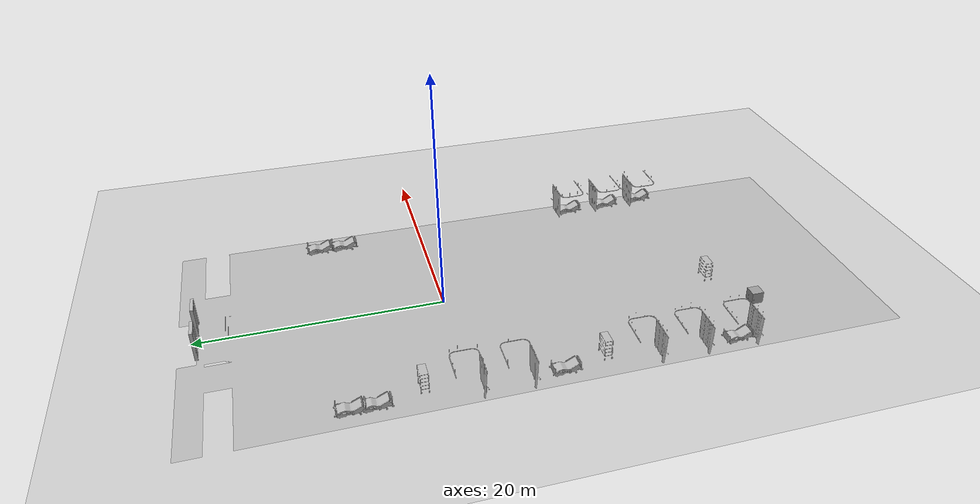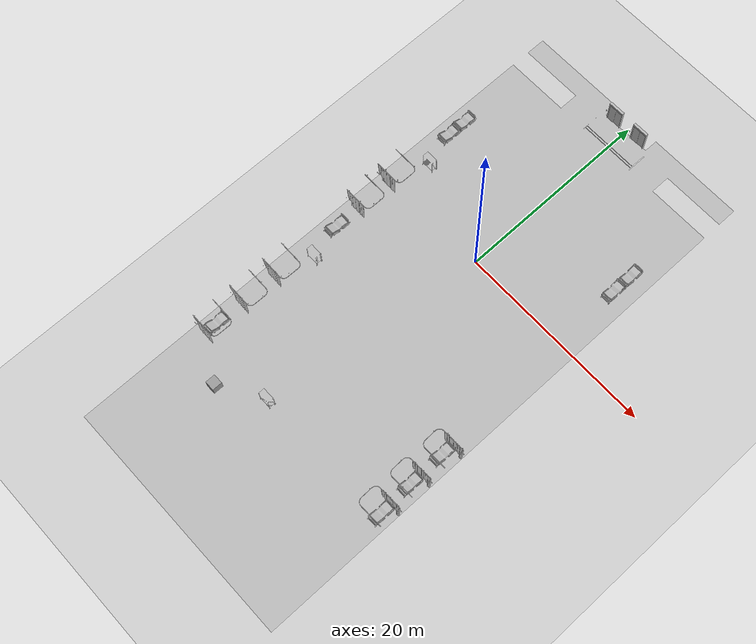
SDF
<sdf version="1.7">
 <world name="world">
  <gravity>0 0 -9.8</gravity>
  <physics name="default_physics" default="0" type="ode">
   <max_step_size>0.001</max_step_size>
   <real_time_factor>1</real_time_factor>
   <real_time_update_rate>1000</real_time_update_rate>
  </physics>
  <scene><ambient>0.6 0.6 0.6 1</ambient><background>0.4 0.4 0.4 1</background><shadows>0</shadows></scene>
  <light name="sun" type="directional">
   <pose>0 0 10 0 -0 0</pose>
   <diffuse>0.8 0.8 0.8 1</diffuse>
   <specular>0.2 0.2 0.2 1</specular>
   <attenuation>
    <range>1000</range>
    <constant>0.9</constant>
    <linear>0.01</linear>
    <quadratic>0.001</quadratic>
   </attenuation>
   <direction>-0.5 0.1 -0.9</direction>
   <spot><inner_angle>0</inner_angle><outer_angle>0</outer_angle><falloff>0</falloff></spot>
  </light>
  <model name="ground_plane">
   <static>1</static>
   <link name="link">
    <collision name="collision">
     <geometry><plane><normal>0 0 1</normal><size>100 100</size></plane></geometry>
     <surface>
      <contact><collide_bitmask>65535</collide_bitmask></contact>
      <friction><ode><mu>100</mu><mu2>50</mu2></ode></friction>
     </surface>
    </collision>
    <visual name="visual">
     <cast_shadows>0</cast_shadows>
     <geometry><plane><normal>0 0 1</normal><size>100 100</size></plane></geometry>
     <material>
      <script><uri>file://media/materials/scripts/gazebo.material</uri><name>Gazebo/Grey</name></script>
     </material>
    </visual>
   </link>
   <pose>0 0 -0.1 0 -0 0</pose>
  </model>
  <model name="aws_robomaker_hospital_floor_01_floor_1">
   <frame name="aws_robomaker_hospital_floor_01_floor::__model__" attached_to="aws_robomaker_hospital_floor_01_floor::link">
    <pose relative_to="__model__">-0.001425 -0.014447 0 0 -0 0</pose>
   </frame>
   <link name="aws_robomaker_hospital_floor_01_floor::link">
    <visual name="visual">
     <geometry>
      <mesh>
       <uri>model://aws_robomaker_hospital_floor_01_floor/meshes/aws_robomaker_hospital_floor_01_floor_visual.dae</uri>
      </mesh>
     </geometry>
    </visual>
    <collision name="collision">
     <geometry>
      <mesh>
       <uri>model://aws_robomaker_hospital_floor_01_floor/meshes/aws_robomaker_hospital_floor_01_floor_collision.dae</uri>
      </mesh>
     </geometry>
     <surface><friction><ode><mu>100</mu><mu2>50</mu2></ode></friction></surface>
    </collision>
    <pose relative_to="aws_robomaker_hospital_floor_01_floor::__model__">0 0 0 0 -0 0</pose>
   </link>
   <static>1</static>
  </model>
  <model name="aws_robomaker_hospital_elevator_01_portal_1">
   <frame name="aws_robomaker_hospital_elevator_01_portal::__model__" attached_to="aws_robomaker_hospital_elevator_01_portal::link">
    <pose relative_to="__model__">-1.50654 19.4813 0.19 0 -0 0</pose>
   </frame>
   <link name="aws_robomaker_hospital_elevator_01_portal::link">
    <visual name="visual">
     <geometry>
      <mesh>
       <uri>model://aws_robomaker_hospital_elevator_01_portal/meshes/aws_robomaker_hospital_elevator_01_portal_visual.dae</uri>
      </mesh>
     </geometry>
    </visual>
    <collision name="collision">
     <geometry>
      <mesh>
       <uri>model://aws_robomaker_hospital_elevator_01_portal/meshes/aws_robomaker_hospital_elevator_01_portal_collision.dae</uri>
      </mesh>
     </geometry>
    </collision>
    <pose relative_to="aws_robomaker_hospital_elevator_01_portal::__model__">0 0 0 0 -0 0</pose>
   </link>
   <static>1</static>
  </model>
  <model name="aws_robomaker_hospital_elevator_01_portal_2">
   <frame name="aws_robomaker_hospital_elevator_01_portal::__model__" attached_to="aws_robomaker_hospital_elevator_01_portal::link">
    <pose relative_to="__model__">1.51134 19.487 0.19 0 -0 0</pose>
   </frame>
   <link name="aws_robomaker_hospital_elevator_01_portal::link">
    <visual name="visual">
     <geometry>
      <mesh>
       <uri>model://aws_robomaker_hospital_elevator_01_portal/meshes/aws_robomaker_hospital_elevator_01_portal_visual.dae</uri>
      </mesh>
     </geometry>
    </visual>
    <collision name="collision">
     <geometry>
      <mesh>
       <uri>model://aws_robomaker_hospital_elevator_01_portal/meshes/aws_robomaker_hospital_elevator_01_portal_collision.dae</uri>
      </mesh>
     </geometry>
    </collision>
    <pose relative_to="aws_robomaker_hospital_elevator_01_portal::__model__">0 0 0 0 -0 0</pose>
   </link>
   <static>1</static>
  </model>
  <model name="aws_robomaker_hospital_elevator_01_door_1">
   <frame name="aws_robomaker_hospital_elevator_01_door::__model__" attached_to="aws_robomaker_hospital_elevator_01_door::link">
    <pose relative_to="__model__">-1.51 19.35 0.19 0 -0 0</pose>
   </frame>
   <link name="aws_robomaker_hospital_elevator_01_door::link">
    <visual name="visual">
     <geometry>
      <mesh>
       <uri>model://aws_robomaker_hospital_elevator_01_door/meshes/aws_robomaker_hospital_elevator_01_door_visual.dae</uri>
      </mesh>
     </geometry>
    </visual>
    <collision name="collision">
     <geometry>
      <mesh>
       <uri>model://aws_robomaker_hospital_elevator_01_door/meshes/aws_robomaker_hospital_elevator_01_door_collision.dae</uri>
      </mesh>
     </geometry>
    </collision>
    <pose relative_to="aws_robomaker_hospital_elevator_01_door::__model__">0 0 0 0 -0 0</pose>
   </link>
   <static>1</static>
  </model>
  <model name="aws_robomaker_hospital_elevator_01_door_2">
   <frame name="aws_robomaker_hospital_elevator_01_door::__model__" attached_to="aws_robomaker_hospital_elevator_01_door::link">
    <pose relative_to="__model__">1.52843 19.3627 0.19 0 -0 0</pose>
   </frame>
   <link name="aws_robomaker_hospital_elevator_01_door::link">
    <visual name="visual">
     <geometry>
      <mesh>
       <uri>model://aws_robomaker_hospital_elevator_01_door/meshes/aws_robomaker_hospital_elevator_01_door_visual.dae</uri>
      </mesh>
     </geometry>
    </visual>
    <collision name="collision">
     <geometry>
      <mesh>
       <uri>model://aws_robomaker_hospital_elevator_01_door/meshes/aws_robomaker_hospital_elevator_01_door_collision.dae</uri>
      </mesh>
     </geometry>
    </collision>
    <pose relative_to="aws_robomaker_hospital_elevator_01_door::__model__">0 0 0 0 -0 0</pose>
   </link>
   <static>1</static>
  </model>
  <model name="aws_robomaker_hospital_curtain_half_open_01_1">
   <frame name="aws_robomaker_hospital_curtain_half_open_01::__model__" attached_to="aws_robomaker_hospital_curtain_half_open_01::link">
    <pose relative_to="__model__">-11.0216 -13.8069 0 0 -0 1.55358</pose>
   </frame>
   <link name="aws_robomaker_hospital_curtain_half_open_01::link">
    <visual name="visual">
     <geometry>
      <mesh>
       <uri>model://aws_robomaker_hospital_curtain_half_open_01/meshes/aws_robomaker_hospital_curtain_half_open_01_visual.dae</uri>
      </mesh>
     </geometry>
    </visual>
    <collision name="collision">
     <geometry>
      <mesh>
       <uri>model://aws_robomaker_hospital_curtain_half_open_01/meshes/aws_robomaker_hospital_curtain_half_open_01_collision.dae</uri>
      </mesh>
     </geometry>
    </collision>
    <pose relative_to="aws_robomaker_hospital_curtain_half_open_01::__model__">0 0 0 0 -0 0</pose>
   </link>
   <static>1</static>
  </model>
  <model name="aws_robomaker_hospital_curtain_half_open_01_2">
   <frame name="aws_robomaker_hospital_curtain_half_open_01::__model__" attached_to="aws_robomaker_hospital_curtain_half_open_01::link">
    <pose relative_to="__model__">11.1417 -21.4039 0 0 0 -1.55117</pose>
   </frame>
   <link name="aws_robomaker_hospital_curtain_half_open_01::link">
    <visual name="visual">
     <geometry>
      <mesh>
       <uri>model://aws_robomaker_hospital_curtain_half_open_01/meshes/aws_robomaker_hospital_curtain_half_open_01_visual.dae</uri>
      </mesh>
     </geometry>
    </visual>
    <collision name="collision">
     <geometry>
      <mesh>
       <uri>model://aws_robomaker_hospital_curtain_half_open_01/meshes/aws_robomaker_hospital_curtain_half_open_01_collision.dae</uri>
      </mesh>
     </geometry>
    </collision>
    <pose relative_to="aws_robomaker_hospital_curtain_half_open_01::__model__">0 0 0 0 -0 0</pose>
   </link>
   <static>1</static>
  </model>
  <model name="aws_robomaker_hospital_curtain_half_open_01_3">
   <frame name="aws_robomaker_hospital_curtain_half_open_01::__model__" attached_to="aws_robomaker_hospital_curtain_half_open_01::link">
    <pose relative_to="__model__">11.1068 -17.8472 0 0 0 -1.55117</pose>
   </frame>
   <link name="aws_robomaker_hospital_curtain_half_open_01::link">
    <visual name="visual">
     <geometry>
      <mesh>
       <uri>model://aws_robomaker_hospital_curtain_half_open_01/meshes/aws_robomaker_hospital_curtain_half_open_01_visual.dae</uri>
      </mesh>
     </geometry>
    </visual>
    <collision name="collision">
     <geometry>
      <mesh>
       <uri>model://aws_robomaker_hospital_curtain_half_open_01/meshes/aws_robomaker_hospital_curtain_half_open_01_collision.dae</uri>
      </mesh>
     </geometry>
    </collision>
    <pose relative_to="aws_robomaker_hospital_curtain_half_open_01::__model__">0 0 0 0 -0 0</pose>
   </link>
   <static>1</static>
  </model>
  <model name="aws_robomaker_hospital_curtain_half_open_01_4">
   <frame name="aws_robomaker_hospital_curtain_half_open_01::__model__" attached_to="aws_robomaker_hospital_curtain_half_open_01::link">
    <pose relative_to="__model__">11.1374 -14.1551 0 0 0 -1.55117</pose>
   </frame>
   <link name="aws_robomaker_hospital_curtain_half_open_01::link">
    <visual name="visual">
     <geometry>
      <mesh>
       <uri>model://aws_robomaker_hospital_curtain_half_open_01/meshes/aws_robomaker_hospital_curtain_half_open_01_visual.dae</uri>
      </mesh>
     </geometry>
    </visual>
    <collision name="collision">
     <geometry>
      <mesh>
       <uri>model://aws_robomaker_hospital_curtain_half_open_01/meshes/aws_robomaker_hospital_curtain_half_open_01_collision.dae</uri>
      </mesh>
     </geometry>
    </collision>
    <pose relative_to="aws_robomaker_hospital_curtain_half_open_01::__model__">0 0 0 0 -0 0</pose>
   </link>
   <static>1</static>
  </model>
  <model name="aws_robomaker_hospital_curtain_half_open_01_5">
   <frame name="aws_robomaker_hospital_curtain_half_open_01::__model__" attached_to="aws_robomaker_hospital_curtain_half_open_01::link">
    <pose relative_to="__model__">-11.0332 -17.61 0 0 -0 1.55358</pose>
   </frame>
   <link name="aws_robomaker_hospital_curtain_half_open_01::link">
    <visual name="visual">
     <geometry>
      <mesh>
       <uri>model://aws_robomaker_hospital_curtain_half_open_01/meshes/aws_robomaker_hospital_curtain_half_open_01_visual.dae</uri>
      </mesh>
     </geometry>
    </visual>
    <collision name="collision">
     <geometry>
      <mesh>
       <uri>model://aws_robomaker_hospital_curtain_half_open_01/meshes/aws_robomaker_hospital_curtain_half_open_01_collision.dae</uri>
      </mesh>
     </geometry>
    </collision>
    <pose relative_to="aws_robomaker_hospital_curtain_half_open_01::__model__">0 0 0 0 -0 0</pose>
   </link>
   <static>1</static>
  </model>
  <model name="aws_robomaker_hospital_curtain_half_open_01_6">
   <frame name="aws_robomaker_hospital_curtain_half_open_01::__model__" attached_to="aws_robomaker_hospital_curtain_half_open_01::link">
    <pose relative_to="__model__">-11.0086 -21.7566 0 0 -0 1.55358</pose>
   </frame>
   <link name="aws_robomaker_hospital_curtain_half_open_01::link">
    <visual name="visual">
     <geometry>
      <mesh>
       <uri>model://aws_robomaker_hospital_curtain_half_open_01/meshes/aws_robomaker_hospital_curtain_half_open_01_visual.dae</uri>
      </mesh>
     </geometry>
    </visual>
    <collision name="collision">
     <geometry>
      <mesh>
       <uri>model://aws_robomaker_hospital_curtain_half_open_01/meshes/aws_robomaker_hospital_curtain_half_open_01_collision.dae</uri>
      </mesh>
     </geometry>
    </collision>
    <pose relative_to="aws_robomaker_hospital_curtain_half_open_01::__model__">0 0 0 0 -0 0</pose>
   </link>
   <static>1</static>
  </model>
  <model name="CGMClassic_1">
   <frame name="CGMClassic::__model__" attached_to="CGMClassic::body">
    <pose relative_to="__model__">11.1777 -18.4129 0 0 0 -3.13719</pose>
   </frame>
   <static>1</static>
   <link name="CGMClassic::body">
    <pose relative_to="CGMClassic::__model__">0 0 0 0 -0 0</pose>
    <visual name="visual">
     <geometry>
      <mesh><uri>model://CGMClassic/meshes/CGMClassic.obj</uri><scale>0.01 0.01 0.01</scale></mesh>
     </geometry>
    </visual>
    <collision name="collision">
     <geometry>
      <mesh><uri>model://CGMClassic/meshes/CGMClassic.obj</uri><scale>0.01 0.01 0.01</scale></mesh>
     </geometry>
    </collision>
   </link>
  </model>
  <model name="CGMClassic_2">
   <frame name="CGMClassic::__model__" attached_to="CGMClassic::body">
    <pose relative_to="__model__">11.1179 -14.6493 0 0 0 -3.13599</pose>
   </frame>
   <static>1</static>
   <link name="CGMClassic::body">
    <pose relative_to="CGMClassic::__model__">0 0 0 0 -0 0</pose>
    <visual name="visual">
     <geometry>
      <mesh><uri>model://CGMClassic/meshes/CGMClassic.obj</uri><scale>0.01 0.01 0.01</scale></mesh>
     </geometry>
    </visual>
    <collision name="collision">
     <geometry>
      <mesh><uri>model://CGMClassic/meshes/CGMClassic.obj</uri><scale>0.01 0.01 0.01</scale></mesh>
     </geometry>
    </collision>
   </link>
  </model>
  <model name="CGMClassic_3">
   <frame name="CGMClassic::__model__" attached_to="CGMClassic::body">
    <pose relative_to="__model__">-11.2304 -21.1134 0 0 0 -3.11834</pose>
   </frame>
   <static>1</static>
   <link name="CGMClassic::body">
    <pose relative_to="CGMClassic::__model__">0 0 0 0 -0 0</pose>
    <visual name="visual">
     <geometry>
      <mesh><uri>model://CGMClassic/meshes/CGMClassic.obj</uri><scale>0.01 0.01 0.01</scale></mesh>
     </geometry>
    </visual>
    <collision name="collision">
     <geometry>
      <mesh><uri>model://CGMClassic/meshes/CGMClassic.obj</uri><scale>0.01 0.01 0.01</scale></mesh>
     </geometry>
    </collision>
   </link>
  </model>
  <model name="CGMClassic_4">
   <frame name="CGMClassic::__model__" attached_to="CGMClassic::body">
    <pose relative_to="__model__">-11.0878 -7.00992 0 0 -0 3.1351</pose>
   </frame>
   <static>1</static>
   <link name="CGMClassic::body">
    <pose relative_to="CGMClassic::__model__">0 0 0 0 -0 0</pose>
    <visual name="visual">
     <geometry>
      <mesh><uri>model://CGMClassic/meshes/CGMClassic.obj</uri><scale>0.01 0.01 0.01</scale></mesh>
     </geometry>
    </visual>
    <collision name="collision">
     <geometry>
      <mesh><uri>model://CGMClassic/meshes/CGMClassic.obj</uri><scale>0.01 0.01 0.01</scale></mesh>
     </geometry>
    </collision>
   </link>
  </model>
  <model name="CGMClassic_5">
   <frame name="CGMClassic::__model__" attached_to="CGMClassic::body">
    <pose relative_to="__model__">-11.0106 8.9505 -0.008203 -0.035019 -0.000392 3.13388</pose>
   </frame>
   <static>1</static>
   <link name="CGMClassic::body">
    <pose relative_to="CGMClassic::__model__">0 0 0 0 -0 0</pose>
    <visual name="visual">
     <geometry>
      <mesh><uri>model://CGMClassic/meshes/CGMClassic.obj</uri><scale>0.01 0.01 0.01</scale></mesh>
     </geometry>
    </visual>
    <collision name="collision">
     <geometry>
      <mesh><uri>model://CGMClassic/meshes/CGMClassic.obj</uri><scale>0.01 0.01 0.01</scale></mesh>
     </geometry>
    </collision>
   </link>
  </model>
  <model name="CGMClassic_6">
   <frame name="CGMClassic::__model__" attached_to="CGMClassic::body">
    <pose relative_to="__model__">-11.025 7.10335 0 -0.035021 1.8e-05 -3.13762</pose>
   </frame>
   <static>1</static>
   <link name="CGMClassic::body">
    <pose relative_to="CGMClassic::__model__">0 0 0 0 -0 0</pose>
    <visual name="visual">
     <geometry>
      <mesh><uri>model://CGMClassic/meshes/CGMClassic.obj</uri><scale>0.01 0.01 0.01</scale></mesh>
     </geometry>
    </visual>
    <collision name="collision">
     <geometry>
      <mesh><uri>model://CGMClassic/meshes/CGMClassic.obj</uri><scale>0.01 0.01 0.01</scale></mesh>
     </geometry>
    </collision>
   </link>
  </model>
  <model name="aws_robomaker_hospital_curtain_half_open_01_7">
   <frame name="aws_robomaker_hospital_curtain_half_open_01::__model__" attached_to="aws_robomaker_hospital_curtain_half_open_01::link">
    <pose relative_to="__model__">-11.0426 0.066126 0 0 -0 1.56614</pose>
   </frame>
   <link name="aws_robomaker_hospital_curtain_half_open_01::link">
    <visual name="visual">
     <geometry>
      <mesh>
       <uri>model://aws_robomaker_hospital_curtain_half_open_01/meshes/aws_robomaker_hospital_curtain_half_open_01_visual.dae</uri>
      </mesh>
     </geometry>
    </visual>
    <collision name="collision">
     <geometry>
      <mesh>
       <uri>model://aws_robomaker_hospital_curtain_half_open_01/meshes/aws_robomaker_hospital_curtain_half_open_01_collision.dae</uri>
      </mesh>
     </geometry>
    </collision>
    <pose relative_to="aws_robomaker_hospital_curtain_half_open_01::__model__">0 0 0 0 -0 0</pose>
   </link>
   <static>1</static>
  </model>
  <model name="aws_robomaker_hospital_curtain_half_open_01_8">
   <frame name="aws_robomaker_hospital_curtain_half_open_01::__model__" attached_to="aws_robomaker_hospital_curtain_half_open_01::link">
    <pose relative_to="__model__">-11.0309 -3.75145 0 0 -0 1.56614</pose>
   </frame>
   <link name="aws_robomaker_hospital_curtain_half_open_01::link">
    <visual name="visual">
     <geometry>
      <mesh>
       <uri>model://aws_robomaker_hospital_curtain_half_open_01/meshes/aws_robomaker_hospital_curtain_half_open_01_visual.dae</uri>
      </mesh>
     </geometry>
    </visual>
    <collision name="collision">
     <geometry>
      <mesh>
       <uri>model://aws_robomaker_hospital_curtain_half_open_01/meshes/aws_robomaker_hospital_curtain_half_open_01_collision.dae</uri>
      </mesh>
     </geometry>
    </collision>
    <pose relative_to="aws_robomaker_hospital_curtain_half_open_01::__model__">0 0 0 0 -0 0</pose>
   </link>
   <static>1</static>
  </model>
  <model name="StorageRack_2">
   <frame name="StorageRack::__model__" attached_to="StorageRack::link">
    <pose relative_to="__model__">-2.69866 -22.4178 -8e-06 0 4e-06 0</pose>
   </frame>
   <link name="StorageRack::link">
    <pose relative_to="StorageRack::__model__">0 0 0 0 -0 0</pose>
    <visual name="visual">
     <geometry><mesh><uri>model://StorageRack/meshes/StorageRack.obj</uri></mesh></geometry>
    </visual>
    <collision name="collision">
     <geometry><mesh><uri>model://StorageRack/meshes/StorageRack.obj</uri></mesh></geometry>
    </collision>
   </link>
   <static>1</static>
  </model>
  <model name="CGMClassic_7">
   <frame name="CGMClassic::__model__" attached_to="CGMClassic::body">
    <pose relative_to="__model__">10.6166 9.06291 -0.008203 -0.03501 0.000885 -3.11285</pose>
   </frame>
   <static>1</static>
   <link name="CGMClassic::body">
    <pose relative_to="CGMClassic::__model__">0 0 0 0 -0 0</pose>
    <visual name="visual">
     <geometry>
      <mesh><uri>model://CGMClassic/meshes/CGMClassic.obj</uri><scale>0.01 0.01 0.01</scale></mesh>
     </geometry>
    </visual>
    <collision name="collision">
     <geometry>
      <mesh><uri>model://CGMClassic/meshes/CGMClassic.obj</uri><scale>0.01 0.01 0.01</scale></mesh>
     </geometry>
    </collision>
   </link>
  </model>
  <model name="CGMClassic_8">
   <frame name="CGMClassic::__model__" attached_to="CGMClassic::body">
    <pose relative_to="__model__">10.6006 6.90956 -0.008203 -0.035003 0.001133 -3.10576</pose>
   </frame>
   <static>1</static>
   <link name="CGMClassic::body">
    <pose relative_to="CGMClassic::__model__">0 0 0 0 -0 0</pose>
    <visual name="visual">
     <geometry>
      <mesh><uri>model://CGMClassic/meshes/CGMClassic.obj</uri><scale>0.01 0.01 0.01</scale></mesh>
     </geometry>
    </visual>
    <collision name="collision">
     <geometry>
      <mesh><uri>model://CGMClassic/meshes/CGMClassic.obj</uri><scale>0.01 0.01 0.01</scale></mesh>
     </geometry>
    </collision>
   </link>
  </model>
  <model name="CGMClassic_9">
   <frame name="CGMClassic::__model__" attached_to="CGMClassic::body">
    <pose relative_to="__model__">11.3613 -21.8867 0 0 0 -3.12292</pose>
   </frame>
   <static>1</static>
   <link name="CGMClassic::body">
    <pose relative_to="CGMClassic::__model__">0 0 0 0 -0 0</pose>
    <visual name="visual">
     <geometry>
      <mesh><uri>model://CGMClassic/meshes/CGMClassic.obj</uri><scale>0.01 0.01 0.01</scale></mesh>
     </geometry>
    </visual>
    <collision name="collision">
     <geometry>
      <mesh><uri>model://CGMClassic/meshes/CGMClassic.obj</uri><scale>0.01 0.01 0.01</scale></mesh>
     </geometry>
    </collision>
   </link>
  </model>
  <model name="StorageRack_3">
   <frame name="StorageRack::__model__" attached_to="StorageRack::link">
    <pose relative_to="__model__">-10.1178 -10.4694 -0 0 -0 0</pose>
   </frame>
   <link name="StorageRack::link">
    <pose relative_to="StorageRack::__model__">0 0 0 0 -0 0</pose>
    <visual name="visual">
     <geometry><mesh><uri>model://StorageRack/meshes/StorageRack.obj</uri></mesh></geometry>
    </visual>
    <collision name="collision">
     <geometry><mesh><uri>model://StorageRack/meshes/StorageRack.obj</uri></mesh></geometry>
    </collision>
   </link>
   <static>1</static>
  </model>
  <model name="StorageRack_4">
   <frame name="StorageRack::__model__" attached_to="StorageRack::link">
    <pose relative_to="__model__">-9.91557 3.5644 -9e-06 1e-06 1e-06 -0.000273</pose>
   </frame>
   <link name="StorageRack::link">
    <pose relative_to="StorageRack::__model__">0 0 0 0 -0 0</pose>
    <visual name="visual">
     <geometry><mesh><uri>model://StorageRack/meshes/StorageRack.obj</uri></mesh></geometry>
    </visual>
    <collision name="collision">
     <geometry><mesh><uri>model://StorageRack/meshes/StorageRack.obj</uri></mesh></geometry>
    </collision>
   </link>
   <static>1</static>
  </model>
  <magnetic_field>6e-06 2.3e-05 -4.2e-05</magnetic_field>
  <atmosphere type="adiabatic"/>
  <audio><device>default</device></audio>
  <spherical_coordinates>
   <surface_model>EARTH_WGS84</surface_model>
   <latitude_deg>0</latitude_deg>
   <longitude_deg>0</longitude_deg>
   <elevation>0</elevation>
   <heading_deg>0</heading_deg>
  </spherical_coordinates>
  <model name="unit_box">
   <link name="link">
    <inertial>
     <mass>1</mass>
     <inertia>
      <ixx>0.166667</ixx>
      <ixy>0</ixy>
      <ixz>0</ixz>
      <iyy>0.166667</iyy>
      <iyz>0</iyz>
      <izz>0.166667</izz>
     </inertia>
    </inertial>
    <visual name="visual">
     <geometry><box><size>1 1 1</size></box></geometry>
     <material>
      <script><name>Gazebo/Grey</name><uri>file://media/materials/scripts/gazebo.material</uri></script>
      <shader type="pixel"/>
     </material>
    </visual>
    <collision name="collision">
     <geometry><box><size>1 1 1</size></box></geometry>
     <surface>
      <friction>
       <ode><mu>1</mu><mu2>1</mu2><fdir1>0 0 0</fdir1><slip1>0</slip1><slip2>0</slip2></ode>
       <torsional>
        <coefficient>1</coefficient>
        <patch_radius>0</patch_radius>
        <surface_radius>0</surface_radius>
        <use_patch_radius>1</use_patch_radius>
        <ode><slip>0</slip></ode>
       </torsional>
      </friction>
      <bounce><restitution_coefficient>0</restitution_coefficient><threshold>1e+06</threshold></bounce>
      <contact>
       <collide_without_contact>0</collide_without_contact>
       <collide_without_contact_bitmask>1</collide_without_contact_bitmask>
       <collide_bitmask>1</collide_bitmask>
       <ode>
        <soft_cfm>0</soft_cfm>
        <soft_erp>0.2</soft_erp>
        <kp>1e+13</kp>
        <kd>1</kd>
        <max_vel>0.01</max_vel>
        <min_depth>0</min_depth>
       </ode>
       <bullet>
        <split_impulse>1</split_impulse>
        <split_impulse_penetration_threshold>-0.01</split_impulse_penetration_threshold>
        <soft_cfm>0</soft_cfm>
        <soft_erp>0.2</soft_erp>
        <kp>1e+13</kp>
        <kd>1</kd>
       </bullet>
      </contact>
     </surface>
    </collision>
   </link>
   <static>0</static>
   <pose>-6.93671 -24.865 0.5 0 -0 0</pose>
  </model>
 </world>
</sdf>
